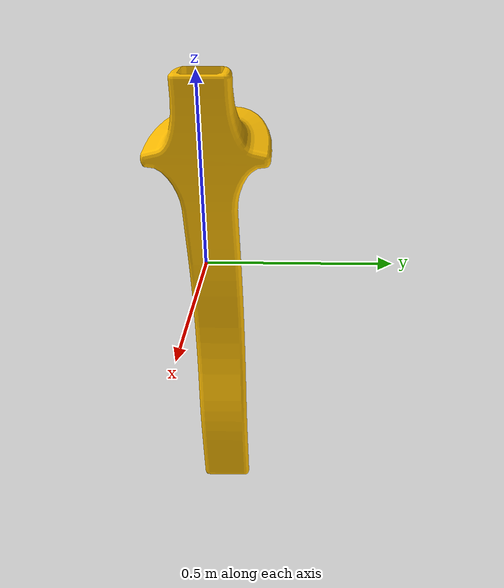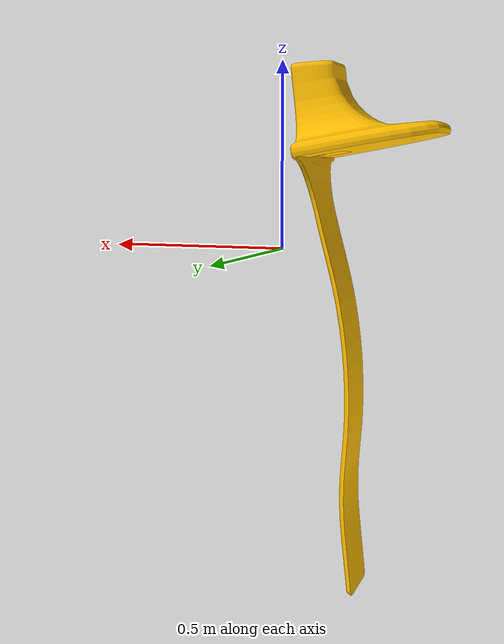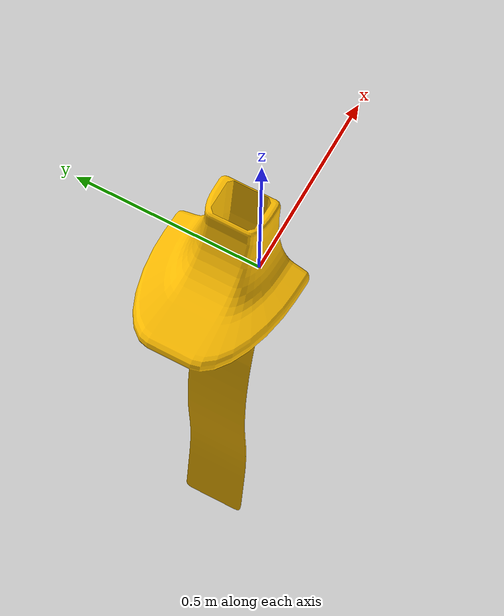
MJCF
<mujoco model="original-16">
  <default>
    <default class="visual">
      <geom group="2" type="mesh" contype="0" conaffinity="0"/>
    </default>
    <default class="collision">
      <geom group="3" type="mesh"/>
    </default>
  </default>
  <asset>
    <material name="material_0_0" specular="0.06666666666666667" shininess="0.03" rgba="1 0.7450980392156863 0 1"/>
    <mesh file="original-16.obj"/>
  </asset>
  <worldbody>
    <body name="original-16">
      <geom material="material_0_0" mesh="original-16" class="visual"/>
      <geom mesh="original-16" class="collision"/>
    </body>
  </worldbody>
</mujoco>
